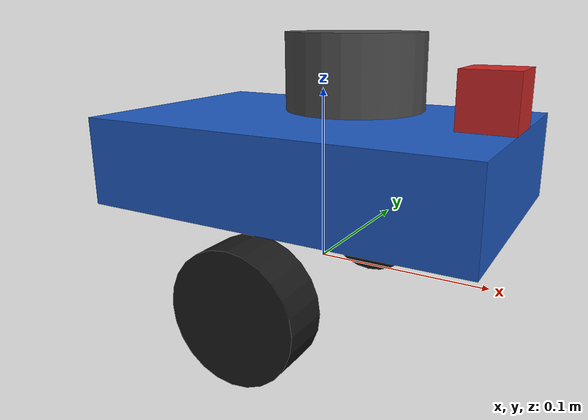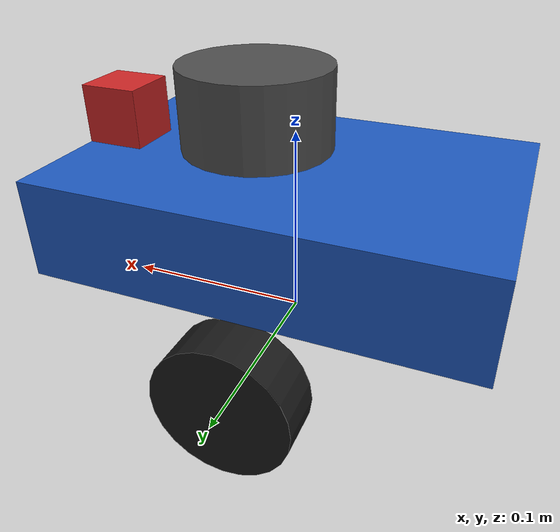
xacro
<?xml version="1.0"?>
<robot xmlns:xacro="http://www.ros.org/wiki/xacro" name="mibot">

  <xacro:include filename="inertial_macros.xacro"/>

  <!-- ============================== Properties ============================== -->

  <xacro:property name="chassis_length"     value="0.22"/>   <!-- 220 mm -->
  <xacro:property name="chassis_width"      value="0.14"/>   <!-- 140 mm -->
  <xacro:property name="chassis_height"     value="0.05"/>   <!-- 50 mm  -->
  <xacro:property name="chassis_mass"       value="0.8"/>

  <xacro:property name="wheel_radius"       value="0.035"/>  <!-- 35 mm  -->
  <xacro:property name="wheel_thickness"    value="0.026"/>  <!-- 26 mm  -->
  <xacro:property name="wheel_mass"         value="0.05"/>
  <xacro:property name="wheel_separation"   value="0.16"/>   <!-- 160 mm centre-to-centre, L-R -->
  <xacro:property name="wheel_offset_x"     value="0.07"/>   <!-- front/back offset from base_link -->

  <xacro:property name="lidar_radius"       value="0.038"/>
  <xacro:property name="lidar_height"       value="0.041"/>
  <xacro:property name="lidar_offset_x"     value="0.02"/>
  <xacro:property name="lidar_offset_z"     value="${chassis_height + lidar_height/2 + 0.005}"/>

  <xacro:property name="camera_x"           value="0.03"/>
  <xacro:property name="camera_y"           value="0.03"/>
  <xacro:property name="camera_z"           value="0.03"/>

  <!-- ============================== Materials ============================== -->

  <material name="chassis_blue"><color rgba="0.12 0.35 0.75 1.0"/></material>
  <material name="wheel_black">  <color rgba="0.10 0.10 0.10 1.0"/></material>
  <material name="lidar_grey">   <color rgba="0.30 0.30 0.30 1.0"/></material>
  <material name="camera_red">   <color rgba="0.80 0.15 0.15 1.0"/></material>

  <!-- ============================== base_link ============================== -->

  <!-- REP-105: base_link is the coordinate frame the robot rotates around.
       For a diff-drive robot, place it on the ground between the drive wheels. -->
  <link name="base_link"/>

  <joint name="chassis_joint" type="fixed">
    <parent link="base_link"/>
    <child  link="chassis"/>
    <origin xyz="0 0 ${wheel_radius}" rpy="0 0 0"/>
  </joint>

  <link name="chassis">
    <visual>
      <origin xyz="0 0 ${chassis_height/2}"/>
      <geometry><box size="${chassis_length} ${chassis_width} ${chassis_height}"/></geometry>
      <material name="chassis_blue"/>
    </visual>
    <collision>
      <origin xyz="0 0 ${chassis_height/2}"/>
      <geometry><box size="${chassis_length} ${chassis_width} ${chassis_height}"/></geometry>
    </collision>
    <xacro:inertial_box mass="${chassis_mass}"
                        x="${chassis_length}" y="${chassis_width}" z="${chassis_height}">
      <origin xyz="0 0 ${chassis_height/2}" rpy="0 0 0"/>
    </xacro:inertial_box>
  </link>

  <!-- ============================== Wheels ============================== -->

  <xacro:macro name="wheel" params="name y_offset">
    <link name="${name}_wheel">
      <visual>
        <origin xyz="0 0 0" rpy="${pi/2} 0 0"/>
        <geometry><cylinder radius="${wheel_radius}" length="${wheel_thickness}"/></geometry>
        <material name="wheel_black"/>
      </visual>
      <collision>
        <origin xyz="0 0 0" rpy="${pi/2} 0 0"/>
        <geometry><cylinder radius="${wheel_radius}" length="${wheel_thickness}"/></geometry>
      </collision>
      <xacro:inertial_cylinder mass="${wheel_mass}"
                               length="${wheel_thickness}" radius="${wheel_radius}">
        <origin xyz="0 0 0" rpy="${pi/2} 0 0"/>
      </xacro:inertial_cylinder>
    </link>

    <joint name="${name}_wheel_joint" type="continuous">
      <parent link="base_link"/>
      <child  link="${name}_wheel"/>
      <origin xyz="0 ${y_offset} 0" rpy="0 0 0"/>
      <axis xyz="0 1 0"/>
    </joint>
  </xacro:macro>

  <xacro:wheel name="left"  y_offset="${ wheel_separation/2}"/>
  <xacro:wheel name="right" y_offset="${-wheel_separation/2}"/>

  <link name="caster">
    <collision>
      <geometry><sphere radius="${wheel_radius}"/></geometry>
    </collision>
    <xacro:inertial_sphere mass="0.001" radius="${wheel_radius}">
      <origin xyz="0 0 0"/>
    </xacro:inertial_sphere>
  </link>

  <joint name="caster_joint" type="fixed">
    <parent link="chassis"/>
    <child  link="caster"/>
    <origin xyz="${wheel_offset_x} 0 ${-wheel_radius + 0.001}"/>
  </joint>

  <!-- ============================== LIDAR ============================== -->

  <joint name="lidar_joint" type="fixed">
    <parent link="chassis"/>
    <child  link="lidar_link"/>
    <origin xyz="${lidar_offset_x} 0 ${lidar_offset_z}" rpy="0 0 0"/>
  </joint>

  <link name="lidar_link">
    <visual>
      <geometry><cylinder radius="${lidar_radius}" length="${lidar_height}"/></geometry>
      <material name="lidar_grey"/>
    </visual>
    <collision>
      <geometry><cylinder radius="${lidar_radius}" length="${lidar_height}"/></geometry>
    </collision>
    <xacro:inertial_cylinder mass="0.17"
                             length="${lidar_height}" radius="${lidar_radius}">
      <origin xyz="0 0 0"/>
    </xacro:inertial_cylinder>
  </link>

  <!-- ============================== Camera ============================== -->

  <joint name="camera_joint" type="fixed">
    <parent link="chassis"/>
    <child  link="camera_link"/>
    <origin xyz="${chassis_length/2 - camera_x/2} 0 ${chassis_height + camera_z/2}"/>
  </joint>

  <link name="camera_link">
    <visual>
      <geometry><box size="${camera_x} ${camera_y} ${camera_z}"/></geometry>
      <material name="camera_red"/>
    </visual>
  </link>

  <!-- REP-103: camera_link_optical is what image messages use -->
  <joint name="camera_optical_joint" type="fixed">
    <parent link="camera_link"/>
    <child  link="camera_link_optical"/>
    <origin rpy="${-pi/2} 0 ${-pi/2}"/>
  </joint>
  <link name="camera_link_optical"/>

</robot>

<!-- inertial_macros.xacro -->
<robot xmlns:xacro="http://www.ros.org/wiki/xacro">

  <!-- Solid cuboid -->
  <xacro:macro name="inertial_box" params="mass x y z *origin">
    <inertial>
      <xacro:insert_block name="origin"/>
      <mass value="${mass}"/>
      <inertia ixx="${(1/12) * mass * (y*y + z*z)}" ixy="0.0" ixz="0.0"
               iyy="${(1/12) * mass * (x*x + z*z)}" iyz="0.0"
               izz="${(1/12) * mass * (x*x + y*y)}"/>
    </inertial>
  </xacro:macro>

  <!-- Solid cylinder (axis along z) -->
  <xacro:macro name="inertial_cylinder" params="mass length radius *origin">
    <inertial>
      <xacro:insert_block name="origin"/>
      <mass value="${mass}"/>
      <inertia ixx="${(1/12) * mass * (3*radius*radius + length*length)}" ixy="0.0" ixz="0.0"
               iyy="${(1/12) * mass * (3*radius*radius + length*length)}" iyz="0.0"
               izz="${(1/2) * mass * radius * radius}"/>
    </inertial>
  </xacro:macro>

  <!-- Solid sphere -->
  <xacro:macro name="inertial_sphere" params="mass radius *origin">
    <inertial>
      <xacro:insert_block name="origin"/>
      <mass value="${mass}"/>
      <inertia ixx="${(2/5) * mass * radius * radius}" ixy="0.0" ixz="0.0"
               iyy="${(2/5) * mass * radius * radius}" iyz="0.0"
               izz="${(2/5) * mass * radius * radius}"/>
    </inertial>
  </xacro:macro>

</robot>
